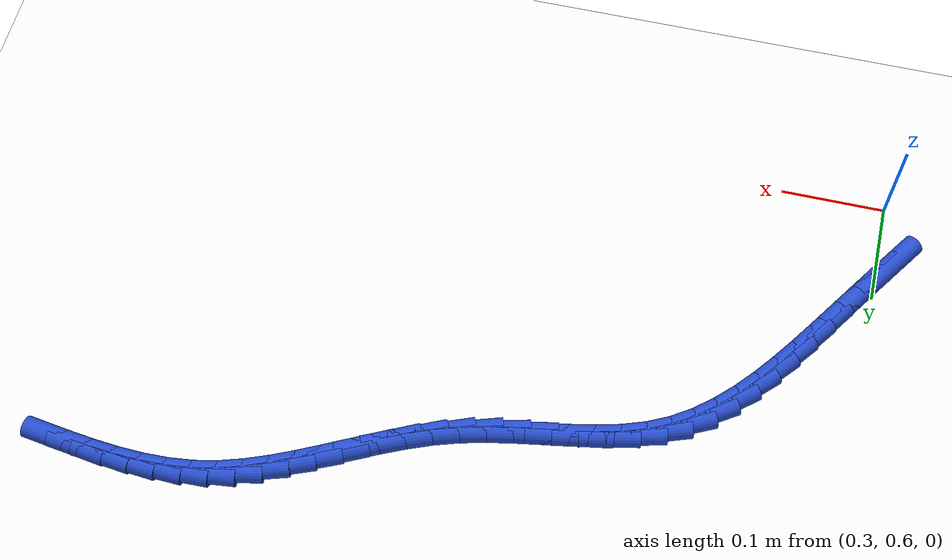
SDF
<sdf version="1.6">
 <world name="default">
  <model name="ground_plane">
   <static>1</static>
   <link name="link">
    <collision name="collision">
     <geometry><plane><normal>0 0 1</normal><size>100 100</size></plane></geometry>
     <surface><friction><ode><mu>100</mu><mu2>50</mu2></ode></friction></surface>
    </collision>
    <visual name="visual">
     <cast_shadows>0</cast_shadows>
     <geometry><plane><normal>0 0 1</normal><size>100 100</size></plane></geometry>
     <material>
      <script><uri>file://media/materials/scripts/gazebo.material</uri><name>Gazebo/WhiteGlow</name></script>
     </material>
    </visual>
   </link>
  </model>
  <model name="line">
   <link name="link_31">
    <pose>0.2916316539509114 0.6704163793144386 0.01 0 1.57 0.9759198461228842</pose>
    <collision name="collision">
     <geometry><cylinder><radius>0.01</radius><length>0.08</length></cylinder></geometry>
    </collision>
    <visual name="visual">
     <material>
      <script><name>Gazebo/Blue</name><uri>file://media/materials/scripts/gazebo.material</uri></script>
     </material>
     <geometry><cylinder><radius>0.01</radius><length>0.08</length></cylinder></geometry>
    </visual>
   </link>
   <link name="link_32">
    <pose>0.30534401538110506 0.6906817075324332 0.01 0 1.57 0.9782819326101947</pose>
    <collision name="collision">
     <geometry><cylinder><radius>0.01</radius><length>0.08</length></cylinder></geometry>
    </collision>
    <visual name="visual">
     <material>
      <script><name>Gazebo/Blue</name><uri>file://media/materials/scripts/gazebo.material</uri></script>
     </material>
     <geometry><cylinder><radius>0.01</radius><length>0.08</length></cylinder></geometry>
    </visual>
   </link>
   <link name="link_33">
    <pose>0.31913643368831096 0.7111694505159197 0.01 0 1.57 0.9810329977839432</pose>
    <collision name="collision">
     <geometry><cylinder><radius>0.01</radius><length>0.08</length></cylinder></geometry>
    </collision>
    <visual name="visual">
     <material>
      <script><name>Gazebo/Blue</name><uri>file://media/materials/scripts/gazebo.material</uri></script>
     </material>
     <geometry><cylinder><radius>0.01</radius><length>0.08</length></cylinder></geometry>
    </visual>
   </link>
   <link name="link_34">
    <pose>0.33301880707826526 0.7319137798672907 0.01 0 1.57 0.9817148681055523</pose>
    <collision name="collision">
     <geometry><cylinder><radius>0.01</radius><length>0.08</length></cylinder></geometry>
    </collision>
    <visual name="visual">
     <material>
      <script><name>Gazebo/Blue</name><uri>file://media/materials/scripts/gazebo.material</uri></script>
     </material>
     <geometry><cylinder><radius>0.01</radius><length>0.08</length></cylinder></geometry>
    </visual>
   </link>
   <link name="link_35">
    <pose>0.347028037138563 0.7528785840286789 0.01 0 1.57 0.971191980364358</pose>
    <collision name="collision">
     <geometry><cylinder><radius>0.01</radius><length>0.08</length></cylinder></geometry>
    </collision>
    <visual name="visual">
     <material>
      <script><name>Gazebo/Blue</name><uri>file://media/materials/scripts/gazebo.material</uri></script>
     </material>
     <geometry><cylinder><radius>0.01</radius><length>0.08</length></cylinder></geometry>
    </visual>
   </link>
   <link name="link_36">
    <pose>0.3613030915162859 0.7737620985971946 0.01 0 1.57 0.9471340086800905</pose>
    <collision name="collision">
     <geometry><cylinder><radius>0.01</radius><length>0.08</length></cylinder></geometry>
    </collision>
    <visual name="visual">
     <material>
      <script><name>Gazebo/Blue</name><uri>file://media/materials/scripts/gazebo.material</uri></script>
     </material>
     <geometry><cylinder><radius>0.01</radius><length>0.08</length></cylinder></geometry>
    </visual>
   </link>
   <link name="link_37">
    <pose>0.37600704852087685 0.7941998050469435 0.01 0 1.57 0.9087952251910757</pose>
    <collision name="collision">
     <geometry><cylinder><radius>0.01</radius><length>0.08</length></cylinder></geometry>
    </collision>
    <visual name="visual">
     <material>
      <script><name>Gazebo/Blue</name><uri>file://media/materials/scripts/gazebo.material</uri></script>
     </material>
     <geometry><cylinder><radius>0.01</radius><length>0.08</length></cylinder></geometry>
    </visual>
   </link>
   <link name="link_38">
    <pose>0.3913029864617782 0.8138271848520312 0.01 0 1.57 0.8548887473618845</pose>
    <collision name="collision">
     <geometry><cylinder><radius>0.01</radius><length>0.08</length></cylinder></geometry>
    </collision>
    <visual name="visual">
     <material>
      <script><name>Gazebo/Blue</name><uri>file://media/materials/scripts/gazebo.material</uri></script>
     </material>
     <geometry><cylinder><radius>0.01</radius><length>0.08</length></cylinder></geometry>
    </visual>
   </link>
   <link name="link_39">
    <pose>0.4073539836484328 0.8322797194865638 0.01 0 1.57 0.7837464531093727</pose>
    <collision name="collision">
     <geometry><cylinder><radius>0.01</radius><length>0.08</length></cylinder></geometry>
    </collision>
    <visual name="visual">
     <material>
      <script><name>Gazebo/Blue</name><uri>file://media/materials/scripts/gazebo.material</uri></script>
     </material>
     <geometry><cylinder><radius>0.01</radius><length>0.08</length></cylinder></geometry>
    </visual>
   </link>
   <link name="link_40">
    <pose>0.4243231183902832 0.8491928904246464 0.01 0 1.57 0.693669161298863</pose>
    <collision name="collision">
     <geometry><cylinder><radius>0.01</radius><length>0.08</length></cylinder></geometry>
    </collision>
    <visual name="visual">
     <material>
      <script><name>Gazebo/Blue</name><uri>file://media/materials/scripts/gazebo.material</uri></script>
     </material>
     <geometry><cylinder><radius>0.01</radius><length>0.08</length></cylinder></geometry>
    </visual>
   </link>
   <link name="link_41">
    <pose>0.44237346899677205 0.8642021791403851 0.01 0 1.57 0.5836048326432384</pose>
    <collision name="collision">
     <geometry><cylinder><radius>0.01</radius><length>0.08</length></cylinder></geometry>
    </collision>
    <visual name="visual">
     <material>
      <script><name>Gazebo/Blue</name><uri>file://media/materials/scripts/gazebo.material</uri></script>
     </material>
     <geometry><cylinder><radius>0.01</radius><length>0.08</length></cylinder></geometry>
    </visual>
   </link>
   <link name="link_42">
    <pose>0.4616681137773423 0.876943067107886 0.01 0 1.57 0.4562226401614573</pose>
    <collision name="collision">
     <geometry><cylinder><radius>0.01</radius><length>0.08</length></cylinder></geometry>
    </collision>
    <visual name="visual">
     <material>
      <script><name>Gazebo/Blue</name><uri>file://media/materials/scripts/gazebo.material</uri></script>
     </material>
     <geometry><cylinder><radius>0.01</radius><length>0.08</length></cylinder></geometry>
    </visual>
   </link>
   <link name="link_43">
    <pose>0.48235092485361825 0.8870932176279565 0.01 0 1.57 0.3401770621577796</pose>
    <collision name="collision">
     <geometry><cylinder><radius>0.01</radius><length>0.08</length></cylinder></geometry>
    </collision>
    <visual name="visual">
     <material>
      <script><name>Gazebo/Blue</name><uri>file://media/materials/scripts/gazebo.material</uri></script>
     </material>
     <geometry><cylinder><radius>0.01</radius><length>0.08</length></cylinder></geometry>
    </visual>
   </link>
   <link name="link_44">
    <pose>0.5043204753942071 0.8948690348501633 0.01 0 1.57 0.2549254770216151</pose>
    <collision name="collision">
     <geometry><cylinder><radius>0.01</radius><length>0.08</length></cylinder></geometry>
    </collision>
    <visual name="visual">
     <material>
      <script><name>Gazebo/Blue</name><uri>file://media/materials/scripts/gazebo.material</uri></script>
     </material>
     <geometry><cylinder><radius>0.01</radius><length>0.08</length></cylinder></geometry>
    </visual>
   </link>
   <link name="link_45">
    <pose>0.5273059523472255 0.9008589394984259 0.01 0 1.57 0.1995977254259138</pose>
    <collision name="collision">
     <geometry><cylinder><radius>0.01</radius><length>0.08</length></cylinder></geometry>
    </collision>
    <visual name="visual">
     <material>
      <script><name>Gazebo/Blue</name><uri>file://media/materials/scripts/gazebo.material</uri></script>
     </material>
     <geometry><cylinder><radius>0.01</radius><length>0.08</length></cylinder></geometry>
    </visual>
   </link>
   <link name="link_46">
    <pose>0.5510331746573587 0.9056587493157112 0.01 0 1.57 0.1721002973887404</pose>
    <collision name="collision">
     <geometry><cylinder><radius>0.01</radius><length>0.08</length></cylinder></geometry>
    </collision>
    <visual name="visual">
     <material>
      <script><name>Gazebo/Blue</name><uri>file://media/materials/scripts/gazebo.material</uri></script>
     </material>
     <geometry><cylinder><radius>0.01</radius><length>0.08</length></cylinder></geometry>
    </visual>
   </link>
   <link name="link_47">
    <pose>0.5752279612692919 0.9098642820449867 0.01 0 1.57 0.17082347116319607</pose>
    <collision name="collision">
     <geometry><cylinder><radius>0.01</radius><length>0.08</length></cylinder></geometry>
    </collision>
    <visual name="visual">
     <material>
      <script><name>Gazebo/Blue</name><uri>file://media/materials/scripts/gazebo.material</uri></script>
     </material>
     <geometry><cylinder><radius>0.01</radius><length>0.08</length></cylinder></geometry>
    </visual>
   </link>
   <link name="link_48">
    <pose>0.59961613112771 0.9140713554292188 0.01 0 1.57 0.19513808211061756</pose>
    <collision name="collision">
     <geometry><cylinder><radius>0.01</radius><length>0.08</length></cylinder></geometry>
    </collision>
    <visual name="visual">
     <material>
      <script><name>Gazebo/Blue</name><uri>file://media/materials/scripts/gazebo.material</uri></script>
     </material>
     <geometry><cylinder><radius>0.01</radius><length>0.08</length></cylinder></geometry>
    </visual>
   </link>
   <link name="link_49">
    <pose>0.6239235031772981 0.9188757872113745 0.01 0 1.57 0.24535229595635472</pose>
    <collision name="collision">
     <geometry><cylinder><radius>0.01</radius><length>0.08</length></cylinder></geometry>
    </collision>
    <visual name="visual">
     <material>
      <script><name>Gazebo/Blue</name><uri>file://media/materials/scripts/gazebo.material</uri></script>
     </material>
     <geometry><cylinder><radius>0.01</radius><length>0.08</length></cylinder></geometry>
    </visual>
   </link>
   <link name="link_50">
    <pose>0.647875896362741 0.9248733951344213 0.01 0 1.57 0.31780580590979524</pose>
    <collision name="collision">
     <geometry><cylinder><radius>0.01</radius><length>0.08</length></cylinder></geometry>
    </collision>
    <visual name="visual">
     <material>
      <script><name>Gazebo/Blue</name><uri>file://media/materials/scripts/gazebo.material</uri></script>
     </material>
     <geometry><cylinder><radius>0.01</radius><length>0.08</length></cylinder></geometry>
    </visual>
   </link>
   <link name="link_51">
    <pose>0.6712379273793113 0.9325584757030204 0.01 0 1.57 0.3833589825987224</pose>
    <collision name="collision">
     <geometry><cylinder><radius>0.01</radius><length>0.08</length></cylinder></geometry>
    </collision>
    <visual name="visual">
     <material>
      <script><name>Gazebo/Blue</name><uri>file://media/materials/scripts/gazebo.material</uri></script>
     </material>
     <geometry><cylinder><radius>0.01</radius><length>0.08</length></cylinder></geometry>
    </visual>
   </link>
   <link name="link_52">
    <pose>0.6940317226193609 0.9417515053439345 0.01 0 1.57 0.4298378916335147</pose>
    <collision name="collision">
     <geometry><cylinder><radius>0.01</radius><length>0.08</length></cylinder></geometry>
    </collision>
    <visual name="visual">
     <material>
      <script><name>Gazebo/Blue</name><uri>file://media/materials/scripts/gazebo.material</uri></script>
     </material>
     <geometry><cylinder><radius>0.01</radius><length>0.08</length></cylinder></geometry>
    </visual>
   </link>
   <link name="link_53">
    <pose>0.7163843036406028 0.9519984835640382 0.01 0 1.57 0.45733984747566964</pose>
    <collision name="collision">
     <geometry><cylinder><radius>0.01</radius><length>0.08</length></cylinder></geometry>
    </collision>
    <visual name="visual">
     <material>
      <script><name>Gazebo/Blue</name><uri>file://media/materials/scripts/gazebo.material</uri></script>
     </material>
     <geometry><cylinder><radius>0.01</radius><length>0.08</length></cylinder></geometry>
    </visual>
   </link>
   <link name="link_54">
    <pose>0.7384229989419155 0.9628446067038728 0.01 0 1.57 0.4660023231944812</pose>
    <collision name="collision">
     <geometry><cylinder><radius>0.01</radius><length>0.08</length></cylinder></geometry>
    </collision>
    <visual name="visual">
     <material>
      <script><name>Gazebo/Blue</name><uri>file://media/materials/scripts/gazebo.material</uri></script>
     </material>
     <geometry><cylinder><radius>0.01</radius><length>0.08</length></cylinder></geometry>
    </visual>
   </link>
   <link name="link_55">
    <pose>0.7602751370221769 0.9738350711039795 0.01 0 1.57 0.4556702824359259</pose>
    <collision name="collision">
     <geometry><cylinder><radius>0.01</radius><length>0.08</length></cylinder></geometry>
    </collision>
    <visual name="visual">
     <material>
      <script><name>Gazebo/Blue</name><uri>file://media/materials/scripts/gazebo.material</uri></script>
     </material>
     <geometry><cylinder><radius>0.01</radius><length>0.08</length></cylinder></geometry>
    </visual>
   </link>
   <link name="link_56">
    <pose>0.782068046380265 0.9845150731048986 0.01 0 1.57 0.4257898629789418</pose>
    <collision name="collision">
     <geometry><cylinder><radius>0.01</radius><length>0.08</length></cylinder></geometry>
    </collision>
    <visual name="visual">
     <material>
      <script><name>Gazebo/Blue</name><uri>file://media/materials/scripts/gazebo.material</uri></script>
     </material>
     <geometry><cylinder><radius>0.01</radius><length>0.08</length></cylinder></geometry>
    </visual>
   </link>
   <link name="link_57">
    <pose>0.8039290555150573 0.9944298090471714 0.01 0 1.57 0.37549712874481705</pose>
    <collision name="collision">
     <geometry><cylinder><radius>0.01</radius><length>0.08</length></cylinder></geometry>
    </collision>
    <visual name="visual">
     <material>
      <script><name>Gazebo/Blue</name><uri>file://media/materials/scripts/gazebo.material</uri></script>
     </material>
     <geometry><cylinder><radius>0.01</radius><length>0.08</length></cylinder></geometry>
    </visual>
   </link>
   <link name="link_58">
    <pose>0.8259854929254329 1.003124475271339 0.01 0 1.57 0.3039549364498188</pose>
    <collision name="collision">
     <geometry><cylinder><radius>0.01</radius><length>0.08</length></cylinder></geometry>
    </collision>
    <visual name="visual">
     <material>
      <script><name>Gazebo/Blue</name><uri>file://media/materials/scripts/gazebo.material</uri></script>
     </material>
     <geometry><cylinder><radius>0.01</radius><length>0.08</length></cylinder></geometry>
    </visual>
   </link>
   <link name="link_59">
    <pose>0.848364687110269 1.0101442681179424 0.01 0 1.57 0.21136150523633418</pose>
    <collision name="collision">
     <geometry><cylinder><radius>0.01</radius><length>0.08</length></cylinder></geometry>
    </collision>
    <visual name="visual">
     <material>
      <script><name>Gazebo/Blue</name><uri>file://media/materials/scripts/gazebo.material</uri></script>
     </material>
     <geometry><cylinder><radius>0.01</radius><length>0.08</length></cylinder></geometry>
    </visual>
   </link>
   <link name="link_60">
    <pose>0.8711918874987525 1.0150422141373594 0.01 0 1.57 0.11340508237841727</pose>
    <collision name="collision">
     <geometry><cylinder><radius>0.01</radius><length>0.08</length></cylinder></geometry>
    </collision>
    <visual name="visual">
     <material>
      <script><name>Gazebo/Blue</name><uri>file://media/materials/scripts/gazebo.material</uri></script>
     </material>
     <geometry><cylinder><radius>0.01</radius><length>0.08</length></cylinder></geometry>
    </visual>
   </link>
   <link name="link_61">
    <pose>0.8945057375491434 1.0176975160193256 0.01 0 1.57 0.03070385552881491</pose>
    <collision name="collision">
     <geometry><cylinder><radius>0.01</radius><length>0.08</length></cylinder></geometry>
    </collision>
    <visual name="visual">
     <material>
      <script><name>Gazebo/Blue</name><uri>file://media/materials/scripts/gazebo.material</uri></script>
     </material>
     <geometry><cylinder><radius>0.01</radius><length>0.08</length></cylinder></geometry>
    </visual>
   </link>
   <link name="link_62">
    <pose>0.9182289122388554 1.0184261379258606 0.01 0 1.57 -0.035397180300656424</pose>
    <collision name="collision">
     <geometry><cylinder><radius>0.01</radius><length>0.08</length></cylinder></geometry>
    </collision>
    <visual name="visual">
     <material>
      <script><name>Gazebo/Blue</name><uri>file://media/materials/scripts/gazebo.material</uri></script>
     </material>
     <geometry><cylinder><radius>0.01</radius><length>0.08</length></cylinder></geometry>
    </visual>
   </link>
   <link name="link_63">
    <pose>0.9422759776171253 1.017574583932783 0.01 0 1.57 -0.08565284100207224</pose>
    <collision name="collision">
     <geometry><cylinder><radius>0.01</radius><length>0.08</length></cylinder></geometry>
    </collision>
    <visual name="visual">
     <material>
      <script><name>Gazebo/Blue</name><uri>file://media/materials/scripts/gazebo.material</uri></script>
     </material>
     <geometry><cylinder><radius>0.01</radius><length>0.08</length></cylinder></geometry>
    </visual>
   </link>
   <link name="link_64">
    <pose>0.9665614997331906 1.0154893581159123 0.01 0 1.57 -0.12103278849331764</pose>
    <collision name="collision">
     <geometry><cylinder><radius>0.01</radius><length>0.08</length></cylinder></geometry>
    </collision>
    <visual name="visual">
     <material>
      <script><name>Gazebo/Blue</name><uri>file://media/materials/scripts/gazebo.material</uri></script>
     </material>
     <geometry><cylinder><radius>0.01</radius><length>0.08</length></cylinder></geometry>
    </visual>
   </link>
   <link name="link_65">
    <pose>0.9910000446362889 1.0125169645510679 0.01 0 1.57 -0.14238413825791815</pose>
    <collision name="collision">
     <geometry><cylinder><radius>0.01</radius><length>0.08</length></cylinder></geometry>
    </collision>
    <visual name="visual">
     <material>
      <script><name>Gazebo/Blue</name><uri>file://media/materials/scripts/gazebo.material</uri></script>
     </material>
     <geometry><cylinder><radius>0.01</radius><length>0.08</length></cylinder></geometry>
    </visual>
   </link>
  </model>
 </world>
</sdf>
